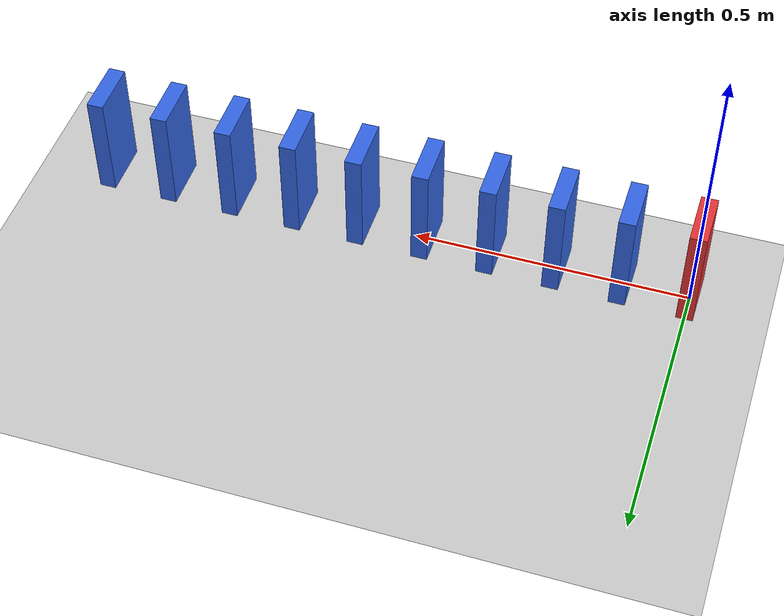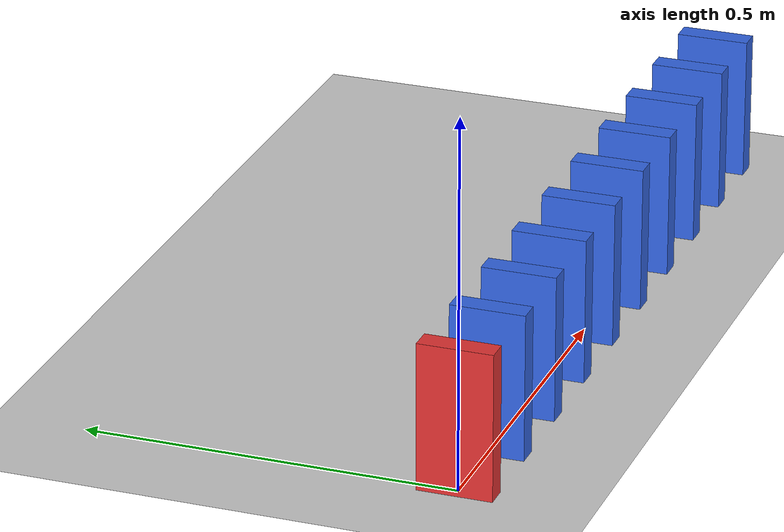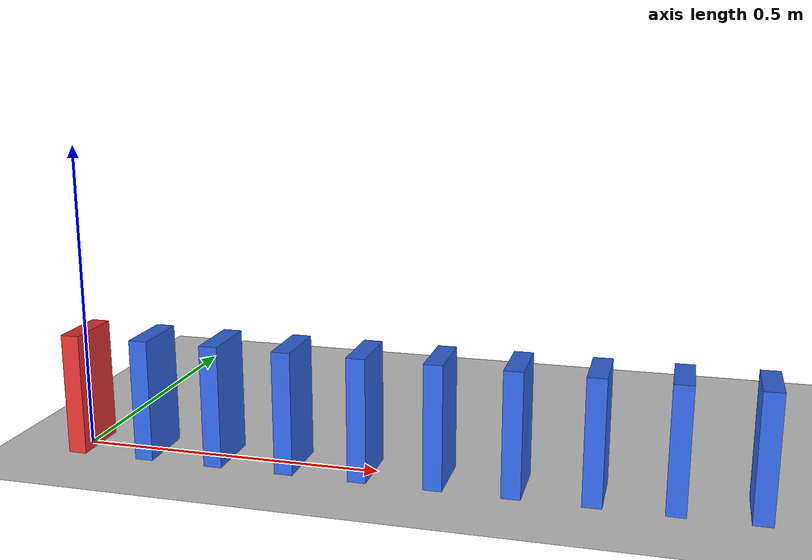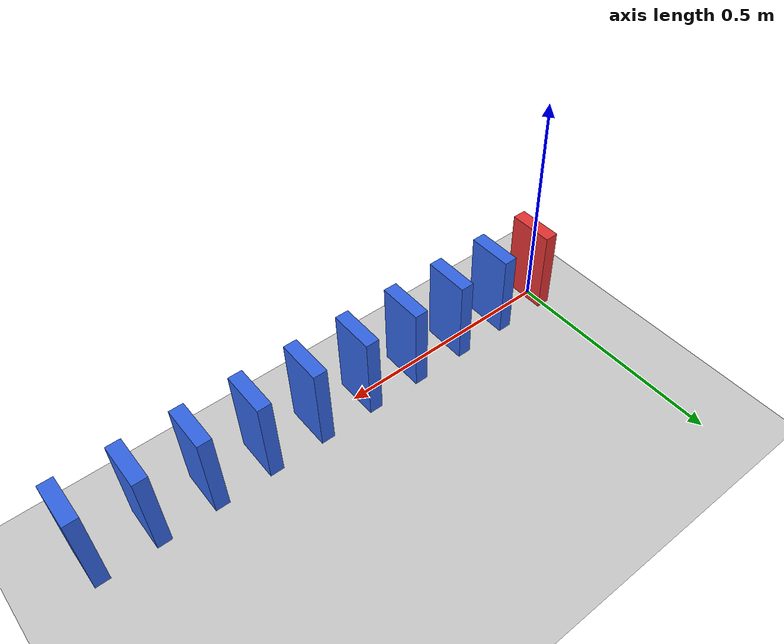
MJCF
<mujoco model="domino_chain">
  <option timestep="0.002" gravity="0 0 -9.81"/>
  <visual>
    <global offwidth="1280" offheight="720"/>
  </visual>
  <worldbody>
    <light name="sun" pos="0.5 -1 2" dir="0 0.5 -1" directional="true"/>
    <geom name="floor" type="plane" size="3 3 0.1" friction="0.6 0.005 0.0001" rgba="0.8 0.8 0.8 1"/>
    <body name="domino1" pos="0 0 0.1">
      <freejoint name="j1"/>
      <geom name="d1" type="box" size="0.015 0.05 0.1" density="600" friction="0.6 0.005 0.0001" rgba="0.9 0.2 0.2 1"/>
    </body>
    <body name="domino2" pos="0.12 0 0.1">
      <freejoint name="j2"/>
      <geom name="d2" type="box" size="0.015 0.05 0.1" density="600" friction="0.6 0.005 0.0001" rgba="0.2 0.4 0.9 1"/>
    </body>
    <body name="domino3" pos="0.24 0 0.1">
      <freejoint name="j3"/>
      <geom name="d3" type="box" size="0.015 0.05 0.1" density="600" friction="0.6 0.005 0.0001" rgba="0.2 0.4 0.9 1"/>
    </body>
    <body name="domino4" pos="0.36 0 0.1">
      <freejoint name="j4"/>
      <geom name="d4" type="box" size="0.015 0.05 0.1" density="600" friction="0.6 0.005 0.0001" rgba="0.2 0.4 0.9 1"/>
    </body>
    <body name="domino5" pos="0.48 0 0.1">
      <freejoint name="j5"/>
      <geom name="d5" type="box" size="0.015 0.05 0.1" density="600" friction="0.6 0.005 0.0001" rgba="0.2 0.4 0.9 1"/>
    </body>
    <body name="domino6" pos="0.6 0 0.1">
      <freejoint name="j6"/>
      <geom name="d6" type="box" size="0.015 0.05 0.1" density="600" friction="0.6 0.005 0.0001" rgba="0.2 0.4 0.9 1"/>
    </body>
    <body name="domino7" pos="0.72 0 0.1">
      <freejoint name="j7"/>
      <geom name="d7" type="box" size="0.015 0.05 0.1" density="600" friction="0.6 0.005 0.0001" rgba="0.2 0.4 0.9 1"/>
    </body>
    <body name="domino8" pos="0.84 0 0.1">
      <freejoint name="j8"/>
      <geom name="d8" type="box" size="0.015 0.05 0.1" density="600" friction="0.6 0.005 0.0001" rgba="0.2 0.4 0.9 1"/>
    </body>
    <body name="domino9" pos="0.96 0 0.1">
      <freejoint name="j9"/>
      <geom name="d9" type="box" size="0.015 0.05 0.1" density="600" friction="0.6 0.005 0.0001" rgba="0.2 0.4 0.9 1"/>
    </body>
    <body name="domino10" pos="1.08 0 0.1">
      <freejoint name="j10"/>
      <geom name="d10" type="box" size="0.015 0.05 0.1" density="600" friction="0.6 0.005 0.0001" rgba="0.2 0.4 0.9 1"/>
    </body>
  </worldbody>
  <keyframe>
    <key name="start" qpos="0 0 0.1 1 0 0 0  0.12 0 0.1 1 0 0 0  0.24 0 0.1 1 0 0 0  0.36 0 0.1 1 0 0 0  0.48 0 0.1 1 0 0 0  0.6 0 0.1 1 0 0 0  0.72 0 0.1 1 0 0 0  0.84 0 0.1 1 0 0 0  0.96 0 0.1 1 0 0 0  1.08 0 0.1 1 0 0 0" qvel="0.4 0 0.06 0 4 0  0 0 0 0 0 0  0 0 0 0 0 0  0 0 0 0 0 0  0 0 0 0 0 0  0 0 0 0 0 0  0 0 0 0 0 0  0 0 0 0 0 0  0 0 0 0 0 0  0 0 0 0 0 0"/>
  </keyframe>
</mujoco>
